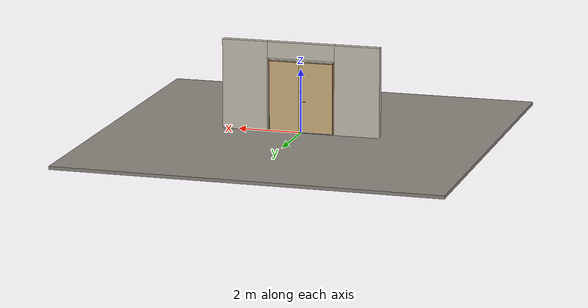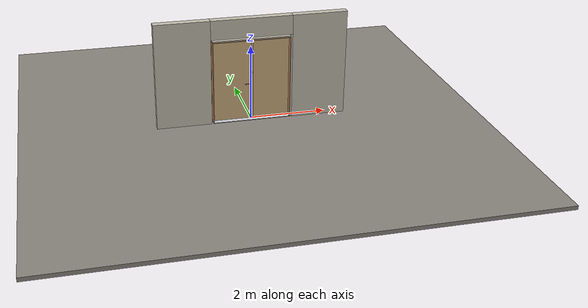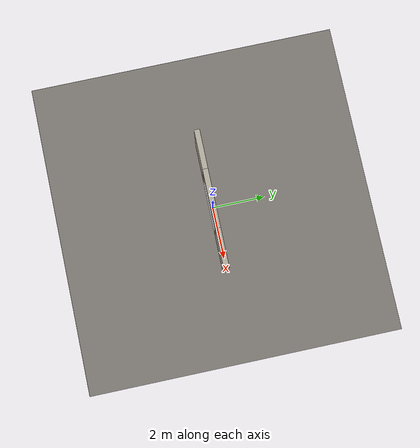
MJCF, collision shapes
<?xml version="1.0" ?>
<mujoco model="db0279_swing_double_minimal">
  <compiler angle="radian" meshdir="../../hardware" texturedir="../../textures" autolimits="true" inertiafromgeom="false"/>
  <option timestep="0.002" integrator="implicitfast" cone="elliptic" impratio="10" noslip_iterations="3">
    <flag multiccd="enable"/>
  </option>
  <size memory="16M"/>
  <default>
    <geom condim="4" solref="0.005 1" solimp="0.95 0.99 0.001"/>
    <joint solreflimit="0.005 1" solimplimit="0.95 0.99 0.001"/>
    <tendon solreflimit="0.005 1"/>
    <equality solref="0.002 1"/>
  </default>
  <visual>
    <headlight ambient="0.4 0.4 0.4" diffuse="0.7 0.7 0.7" specular="0.2 0.2 0.2"/>
    <quality shadowsize="4096"/>
    <map znear="0.01" zfar="60"/>
  </visual>
  <asset>
    <mesh name="ring_cc5c941a8a" file="ring_cc5c941a8a.obj"/>
    <material name="mat_floor" rgba="0.55 0.53 0.5 1" specular="0.2" shininess="0.15" reflectance="0"/>
    <material name="mat_wall" rgba="0.78 0.76 0.7 1" specular="0.2" shininess="0.1" reflectance="0"/>
    <material name="mat_leaf_a" rgba="0.82 0.7 0.5 1" specular="0.2" shininess="0.45" reflectance="0"/>
    <material name="mat_leaf_a_brace" rgba="0.738 0.63 0.45 1" specular="0.2" shininess="0.2" reflectance="0"/>
    <material name="mat_hinge" rgba="0.65 0.66 0.68 1" specular="0.74" shininess="0.5" reflectance="0.36"/>
    <material name="mat_op_wrought_iron" rgba="0.08 0.08 0.09 1" specular="0.56" shininess="0.25" reflectance="0.24"/>
    <material name="mat_op_brass" rgba="0.85 0.66 0.3 1" specular="0.8" shininess="0.75" reflectance="0.4"/>
    <material name="mat_leaf_b" rgba="0.82 0.7 0.5 1" specular="0.2" shininess="0.45" reflectance="0"/>
    <material name="mat_leaf_b_brace" rgba="0.738 0.63 0.45 1" specular="0.2" shininess="0.2" reflectance="0"/>
    <material name="mat_frame" rgba="0.75 0.55 0.38 1" specular="0.2" shininess="0.45" reflectance="0"/>
    <material name="mat_threshold" rgba="0.8 0.81 0.83 1" specular="0.8" shininess="0.6" reflectance="0.4"/>
    <texture name="skybox" type="skybox" builtin="gradient" rgb1="0.6 0.7 0.85" rgb2="0.9 0.92 0.95" width="256" height="256"/>
  </asset>
  <worldbody>
    <light name="sun" pos="1.5 -2.5 4" dir="-0.3 0.5 -0.8" directional="true" diffuse="0.8 0.8 0.8" specular="0.3 0.3 0.3" castshadow="true"/>
    <light name="fill" pos="-1.5 2.5 3" dir="0.3 -0.5 -0.7" directional="true" diffuse="0.35 0.35 0.4" castshadow="false"/>
    <camera name="robot_view" pos="0 -2.757687 1.862413" xyaxes="1 0 0 0 0.26963 0.962964" fovy="52"/>
    <camera name="far_view" pos="0 2.641687 1.862413" xyaxes="-1 0 0 0 -0.26963 0.962964" fovy="52"/>
    <camera name="iso" pos="-2.051762 -2.325737 2.294363" xyaxes="0.741536 -0.670913 0 0.242917 0.268487 0.932151" fovy="46"/>
    <camera name="detail_handle" pos="0.0735 -0.854 1.27" xyaxes="0.97561 0.219512 0 -0.070934 0.315262 0.94635" fovy="38"/>
    <geom name="floor" type="box" size="6 6 0.05" pos="0 0 -0.05" material="mat_floor" group="0" contype="1" conaffinity="1" friction="0.8 0.005 0.0001" density="2400"/>
    <geom name="wall_left" type="box" size="0.71775 0.1 1.4065" pos="-1.78225 -0.058 1.4065" material="mat_wall" group="0" contype="1" conaffinity="1" friction="0.6 0.005 0.0001" density="800"/>
    <geom name="wall_right" type="box" size="0.71775 0.1 1.4065" pos="1.78225 -0.058 1.4065" material="mat_wall" group="0" contype="1" conaffinity="1" friction="0.6 0.005 0.0001" density="800"/>
    <geom name="wall_header" type="box" size="1.0645 0.1 0.255" pos="0 -0.058 2.558" material="mat_wall" group="0" contype="1" conaffinity="1" friction="0.6 0.005 0.0001" density="800"/>
    <geom name="jamb_l" type="box" size="0.0095 0.1 1.1065" pos="-1.014 -0.058 1.1065" material="mat_frame" group="0" contype="1" conaffinity="1" friction="0.6 0.005 0.0001" density="300"/>
    <geom name="jamb_r" type="box" size="0.0095 0.1 1.1065" pos="1.014 -0.058 1.1065" material="mat_frame" group="0" contype="1" conaffinity="1" friction="0.6 0.005 0.0001" density="300"/>
    <geom name="jamb_head" type="box" size="1.0235 0.1 0.0095" pos="0 -0.058 2.2225" material="mat_frame" group="0" contype="1" conaffinity="1" friction="0.6 0.005 0.0001" density="300"/>
    <geom name="head_stud" type="box" size="1.0235 0.1 0.015" pos="0 -0.058 2.247" material="mat_wall" group="0" contype="1" conaffinity="1" friction="0.6 0.005 0.0001" density="500"/>
    <geom name="threshold" type="box" size="1.0235 0.1 0.0065" pos="0 -0.058 0.0065" material="mat_threshold" group="0" contype="1" conaffinity="1" friction="0.5 0.005 0.0001" density="2700"/>
    <site name="approach_point" pos="0 -1.5 0" quat="1 0 0 0" size="0.05" rgba="0.2 0.9 0.2 0.5" group="4"/>
    <site name="goal_point" pos="0 1.5 0" quat="1 0 0 0" size="0.05" rgba="0.2 0.9 0.2 0.5" group="4"/>
    <site name="door_plane_center" pos="0 0 1.1065" quat="1 0 0 0" size="0.02" rgba="0.2 0.9 0.2 0.5" group="4"/>
    <site name="approach_point_2" pos="0 -1.5 0" quat="1 0 0 0" size="0.05" rgba="0.2 0.9 0.2 0.5" group="4"/>
    <site name="goal_point_2" pos="0 1.5 0" quat="1 0 0 0" size="0.05" rgba="0.2 0.9 0.2 0.5" group="4"/>
    <site name="door_plane_center_2" pos="0 0 1.1065" quat="1 0 0 0" size="0.02" rgba="0.2 0.9 0.2 0.5" group="4"/>
    <site name="approach_point_3" pos="0 -1.5 0" quat="1 0 0 0" size="0.05" rgba="0.2 0.9 0.2 0.5" group="4"/>
    <site name="goal_point_3" pos="0 1.5 0" quat="1 0 0 0" size="0.05" rgba="0.2 0.9 0.2 0.5" group="4"/>
    <site name="door_plane_center_3" pos="0 0 1.1065" quat="1 0 0 0" size="0.02" rgba="0.2 0.9 0.2 0.5" group="4"/>
    <body name="leaf_a" pos="-1.0045 0 0">
      <inertial pos="0.509891 0 1.111698" mass="39.784151" quat="0.500424 0.500393 0.499575 -0.499606" diaginertia="3.373140866 15.665654359 19.02187485"/>
      <joint name="leaf_a_hinge" type="hinge" axis="0 0 1" pos="0.003 0.029 0" limited="true" range="0 1.396263" damping="0.44732" frictionloss="3.732683" armature="0.02"/>
      <geom name="leaf_a_slab" type="box" size="0.5 0.022 1.096" pos="0.503 0 1.113" material="mat_leaf_a" group="0" contype="1" conaffinity="1" friction="0.35 0.005 0.0001" density="1"/>
      <geom name="leaf_a_ring_pull_n" type="mesh" mesh="ring_cc5c941a8a" pos="0.898 -0.022 1.05" quat="0.707107 0.707107 0 0" material="mat_op_wrought_iron" group="1" contype="0" conaffinity="0" density="3000"/>
      <geom name="leaf_a_ring_pull_col_n" type="capsule" size="0.008 0.05" pos="0.898 -0.054 0.99" quat="0.707107 0 0.707107 0" material="mat_op_wrought_iron" group="3" contype="1" conaffinity="1" rgba="0.8 0.3 0.3 0.25" friction="0.7 0.01 0.0001" density="3000"/>
      <geom name="leaf_a_ring_pull_p" type="mesh" mesh="ring_cc5c941a8a" pos="0.898 0.022 1.05" quat="-0.707107 0.707107 0 0" material="mat_op_wrought_iron" group="1" contype="0" conaffinity="0" density="3000"/>
      <geom name="leaf_a_ring_pull_col_p" type="capsule" size="0.008 0.05" pos="0.898 0.054 0.99" quat="0.707107 0 0.707107 0" material="mat_op_wrought_iron" group="3" contype="1" conaffinity="1" rgba="0.8 0.3 0.3 0.25" friction="0.7 0.01 0.0001" density="3000"/>
      <site name="leaf_a_ring_pull_grip_n" pos="0.898 -0.054 0.99" quat="1 0 0 0" size="0.012" rgba="0.2 0.9 0.2 0.5" group="4"/>
      <site name="leaf_a_ring_pull_grip_p" pos="0.898 0.054 0.99" quat="1 0 0 0" size="0.012" rgba="0.2 0.9 0.2 0.5" group="4"/>
      <site name="leaf_a_edge_mid" pos="1.003 0 1.096" quat="1 0 0 0" size="0.02" rgba="0.2 0.9 0.2 0.5" group="4"/>
    </body>
    <body name="leaf_b" pos="1.0045 0 0">
      <inertial pos="-0.473075 0 1.113" mass="39.444065" quat="0.5 0.5 0.5 -0.5" diaginertia="2.91180549 15.799971666 18.699049835"/>
      <joint name="leaf_b_hinge" type="hinge" axis="0 0 -1" pos="-0.003 0.029 0" limited="true" range="0 0.001" damping="0.44732" frictionloss="3.732683" armature="0.02"/>
      <geom name="leaf_b_edge_1300_wall_n" type="box" size="0.03 0.024 0.01" pos="-0.973 0.002 1.3" material="mat_leaf_b" group="0" contype="1" conaffinity="1" friction="0.6 0.005 0.0001" density="1"/>
      <geom name="leaf_b_edge_1300_wall_p" type="box" size="0.022 0.003 0.01" pos="-0.981 0.045 1.3" material="mat_leaf_b" group="0" contype="1" conaffinity="1" friction="0.6 0.005 0.0001" density="1"/>
      <geom name="leaf_b_edge_1300_back" type="box" size="0.009 0.008 0.01" pos="-0.952 0.034 1.3" material="mat_leaf_b" group="0" contype="1" conaffinity="1" friction="0.6 0.005 0.0001" density="1"/>
      <geom name="leaf_b_edge_seg_0" type="box" size="0.03 0.022 0.6365" pos="-0.973 0 0.6535" material="mat_leaf_b" group="0" contype="1" conaffinity="1" friction="0.6 0.005 0.0001" density="1"/>
      <geom name="leaf_b_edge_seg_1" type="box" size="0.03 0.022 0.4495" pos="-0.973 0 1.7595" material="mat_leaf_b" group="0" contype="1" conaffinity="1" friction="0.6 0.005 0.0001" density="1"/>
      <geom name="leaf_b_slab" type="box" size="0.47 0.022 1.096" pos="-0.473 0 1.113" material="mat_leaf_b" group="0" contype="1" conaffinity="1" friction="0.35 0.005 0.0001" density="1"/>
      <site name="leaf_b_edge_mid" pos="-1.003 0 1.096" quat="1 0 0 0" size="0.02" rgba="0.2 0.9 0.2 0.5" group="4"/>
    </body>
  </worldbody>
  <sensor>
    <jointpos name="leaf_a_hinge_pos" joint="leaf_a_hinge"/>
    <jointvel name="leaf_a_hinge_vel" joint="leaf_a_hinge"/>
    <jointpos name="leaf_b_hinge_pos" joint="leaf_b_hinge"/>
    <jointvel name="leaf_b_hinge_vel" joint="leaf_b_hinge"/>
  </sensor>
</mujoco>
